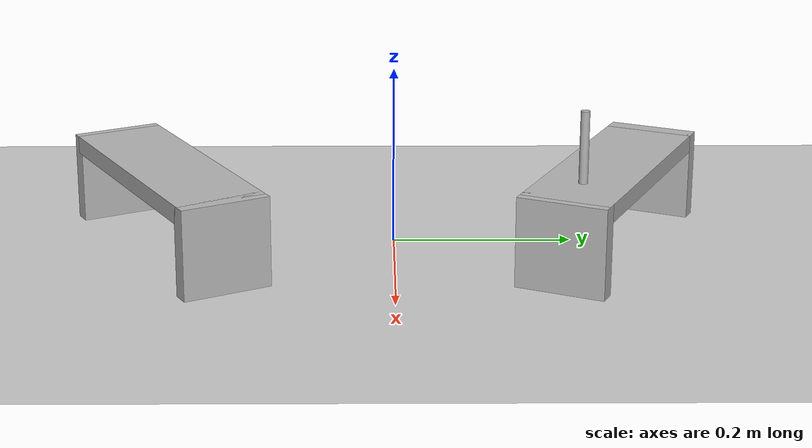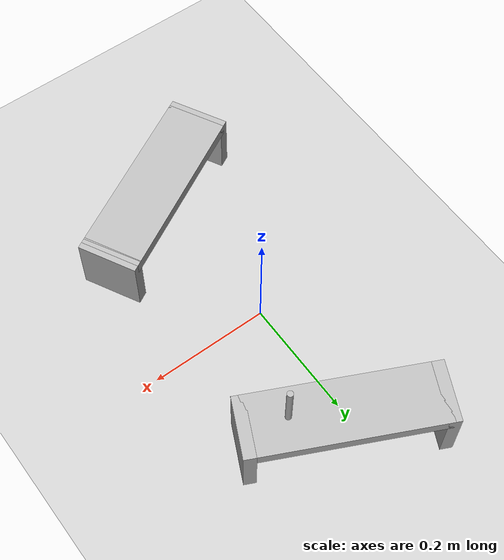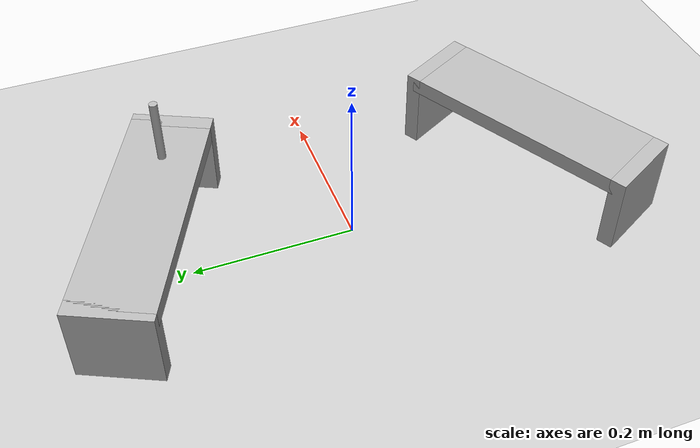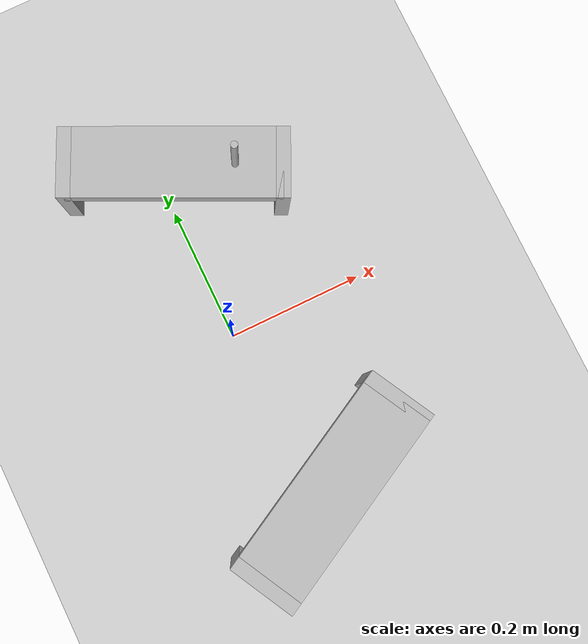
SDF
<sdf version="1.7">
 <world name="default">
  <model name="ground_plane">
   <static>1</static>
   <link name="link">
    <collision name="collision">
     <geometry><plane><normal>0 0 1</normal><size>100 100</size></plane></geometry>
     <surface>
      <contact><collide_bitmask>65535</collide_bitmask></contact>
      <friction><ode><mu>100</mu><mu2>50</mu2></ode></friction>
     </surface>
    </collision>
    <visual name="visual">
     <cast_shadows>0</cast_shadows>
     <geometry><plane><normal>0 0 1</normal><size>100 100</size></plane></geometry>
     <material>
      <script><uri>file://media/materials/scripts/gazebo.material</uri><name>Gazebo/Grey</name></script>
     </material>
    </visual>
   </link>
  </model>
  <light name="sun" type="directional">
   <pose>0 0 10 0 -0 0</pose>
   <diffuse>0.8 0.8 0.8 1</diffuse>
   <specular>0.2 0.2 0.2 1</specular>
   <attenuation>
    <range>1000</range>
    <constant>0.9</constant>
    <linear>0.01</linear>
    <quadratic>0.001</quadratic>
   </attenuation>
   <direction>-0.5 0.1 -0.9</direction>
   <spot><inner_angle>0</inner_angle><outer_angle>0</outer_angle><falloff>0</falloff></spot>
  </light>
  <scene><shadows>0</shadows><ambient>0.4 0.4 0.4 1</ambient><background>0.7 0.7 0.7 1</background></scene>
  <physics type="ode">
   <real_time_update_rate>1000</real_time_update_rate>
   <max_step_size>0.001</max_step_size>
   <real_time_factor>1</real_time_factor>
   <ode>
    <solver>
     <type>quick</type>
     <iters>150</iters>
     <precon_iters>0</precon_iters>
     <sor>1.4</sor>
     <use_dynamic_moi_rescaling>1</use_dynamic_moi_rescaling>
    </solver>
    <constraints>
     <cfm>1e-05</cfm>
     <erp>0.2</erp>
     <contact_max_correcting_vel>2000</contact_max_correcting_vel>
     <contact_surface_layer>0.01</contact_surface_layer>
    </constraints>
   </ode>
  </physics>
  <gravity>0 0 -9.8</gravity>
  <magnetic_field>6e-06 2.3e-05 -4.2e-05</magnetic_field>
  <atmosphere type="adiabatic"/>
  <audio><device>default</device></audio>
  <spherical_coordinates>
   <surface_model>EARTH_WGS84</surface_model>
   <latitude_deg>0</latitude_deg>
   <longitude_deg>0</longitude_deg>
   <elevation>0</elevation>
   <heading_deg>0</heading_deg>
  </spherical_coordinates>
  <model name="table1">
   <static>1</static>
   <pose>0.004798 0.195232 0 0 -0 1.12537</pose>
   <link name="link">
    <collision name="top_collision">
     <pose>0.05 0 0.09 0 -0 0</pose>
     <geometry><box><size>0.1 0.3 0.02</size></box></geometry>
    </collision>
    <visual name="top_visual">
     <pose>0.05 0 0.09 0 -0 0</pose>
     <geometry><box><size>0.1 0.3 0.02</size></box></geometry>
    </visual>
    <collision name="leg_left_collision">
     <pose>0.05 -0.15 0.05 0 -0 0</pose>
     <geometry><box><size>0.1 0.02 0.1</size></box></geometry>
    </collision>
    <visual name="leg_left_visual">
     <pose>0.05 -0.15 0.05 0 -0 0</pose>
     <geometry><box><size>0.1 0.02 0.1</size></box></geometry>
    </visual>
    <collision name="leg_right_collision">
     <pose>0.05 0.15 0.05 0 -0 0</pose>
     <geometry><box><size>0.1 0.02 0.1</size></box></geometry>
    </collision>
    <visual name="leg_right_visual">
     <pose>0.05 0.15 0.05 0 -0 0</pose>
     <geometry><box><size>0.1 0.02 0.1</size></box></geometry>
    </visual>
   </link>
  </model>
  <model name="table1_0">
   <static>1</static>
   <pose>0.050941 -0.294764 -0 0 -0 2.06389</pose>
   <link name="link">
    <collision name="top_collision">
     <pose>0.05 0 0.09 0 -0 0</pose>
     <geometry><box><size>0.1 0.3 0.02</size></box></geometry>
    </collision>
    <visual name="top_visual">
     <pose>0.05 0 0.09 0 -0 0</pose>
     <geometry><box><size>0.1 0.3 0.02</size></box></geometry>
    </visual>
    <collision name="leg_left_collision">
     <pose>0.05 -0.15 0.05 0 -0 0</pose>
     <geometry><box><size>0.1 0.02 0.1</size></box></geometry>
    </collision>
    <visual name="leg_left_visual">
     <pose>0.05 -0.15 0.05 0 -0 0</pose>
     <geometry><box><size>0.1 0.02 0.1</size></box></geometry>
    </visual>
    <collision name="leg_right_collision">
     <pose>0.05 0.15 0.05 0 -0 0</pose>
     <geometry><box><size>0.1 0.02 0.1</size></box></geometry>
    </collision>
    <visual name="leg_right_visual">
     <pose>0.05 0.15 0.05 0 -0 0</pose>
     <geometry><box><size>0.1 0.02 0.1</size></box></geometry>
    </visual>
   </link>
  </model>
  <model name="pickable_object">
   <static>0</static>
   <pose>0.101016 0.201451 0.140006 -0.000845 -0.00087 0.001298</pose>
   <link name="link">
    <inertial>
     <mass>0.05</mass>
     <inertia><ixx>1e-05</ixx><iyy>1e-05</iyy><izz>1e-05</izz><ixy>0</ixy><ixz>0</ixz><iyz>0</iyz></inertia>
    </inertial>
    <collision name="collision">
     <geometry><cylinder><radius>0.005</radius><length>0.08</length></cylinder></geometry>
    </collision>
    <visual name="visual">
     <geometry><cylinder><radius>0.005</radius><length>0.08</length></cylinder></geometry>
    </visual>
   </link>
  </model>
  <plugin name="gazebo_link_attacher" filename="libgazebo_link_attacher.so"/>
 </world>
</sdf>
